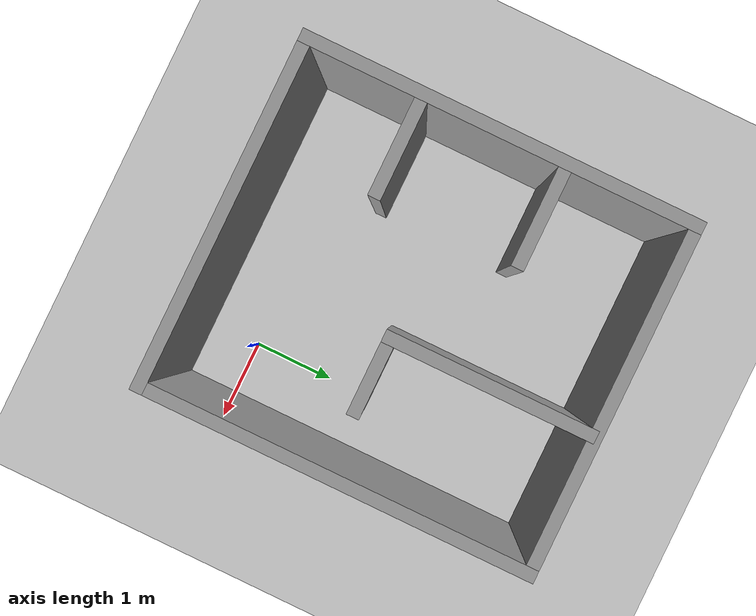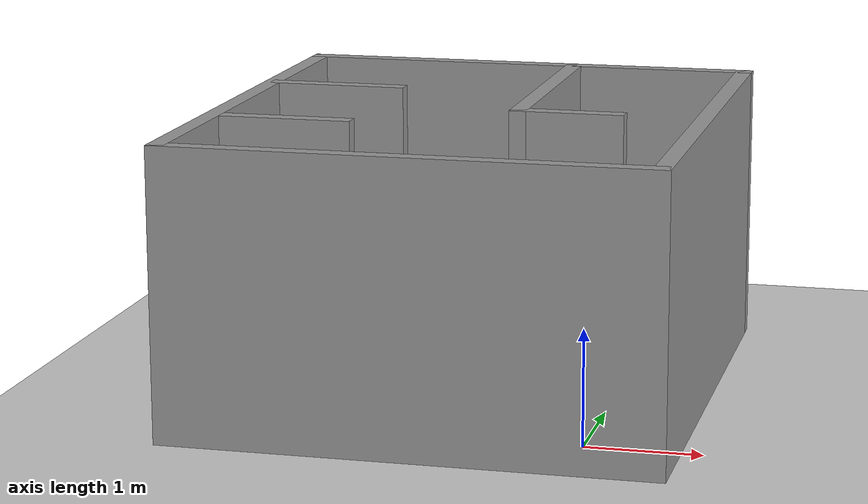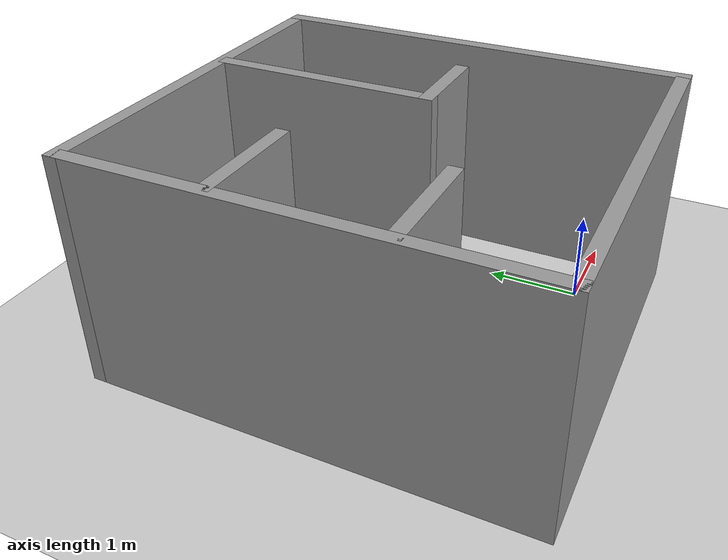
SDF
<sdf version="1.7">
 <world name="default">
  <light name="sun" type="directional">
   <pose>0 0 10 0 -0 0</pose>
   <diffuse>0.8 0.8 0.8 1</diffuse>
   <specular>0.2 0.2 0.2 1</specular>
   <attenuation>
    <range>1000</range>
    <constant>0.9</constant>
    <linear>0.01</linear>
    <quadratic>0.001</quadratic>
   </attenuation>
   <direction>-0.5 0.1 -0.9</direction>
   <spot><inner_angle>0</inner_angle><outer_angle>0</outer_angle><falloff>0</falloff></spot>
  </light>
  <model name="ground_plane">
   <static>1</static>
   <link name="link">
    <collision name="collision">
     <geometry><plane><normal>0 0 1</normal><size>100 100</size></plane></geometry>
     <surface><friction><ode><mu>100</mu><mu2>50</mu2></ode></friction></surface>
    </collision>
    <visual name="visual">
     <cast_shadows>0</cast_shadows>
     <geometry><plane><normal>0 0 1</normal><size>100 100</size></plane></geometry>
     <material>
      <script><uri>file://media/materials/scripts/gazebo.material</uri><name>Gazebo/Grey</name></script>
     </material>
    </visual>
   </link>
  </model>
  <gravity>0 0 -9.8</gravity>
  <magnetic_field>6e-06 2.3e-05 -4.2e-05</magnetic_field>
  <atmosphere type="adiabatic"/>
  <physics type="ode">
   <max_step_size>0.001</max_step_size>
   <real_time_factor>1</real_time_factor>
   <real_time_update_rate>1000</real_time_update_rate>
  </physics>
  <scene><ambient>0.4 0.4 0.4 1</ambient><background>0.7 0.7 0.7 1</background><shadows>1</shadows></scene>
  <audio><device>default</device></audio>
  <spherical_coordinates>
   <surface_model>EARTH_WGS84</surface_model>
   <latitude_deg>0</latitude_deg>
   <longitude_deg>0</longitude_deg>
   <elevation>0</elevation>
   <heading_deg>0</heading_deg>
  </spherical_coordinates>
  <model name="resturent_model">
   <pose>-0.544104 1.16497 0 0 -0 0</pose>
   <link name="Wall_1">
    <collision name="Wall_1_Collision">
     <geometry><box><size>4.75 0.15 2.5</size></box></geometry>
     <pose>0 0 1.25 0 -0 0</pose>
    </collision>
    <visual name="Wall_1_Visual">
     <pose>0 0 1.25 0 -0 0</pose>
     <geometry><box><size>4.75 0.15 2.5</size></box></geometry>
     <material>
      <script><uri>file://media/materials/scripts/gazebo.material</uri><name>Gazebo/Grey</name></script>
      <ambient>1 1 1 1</ambient>
     </material>
     <meta><layer>0</layer></meta>
    </visual>
    <pose>-2.81837 0.444172 0 0 -0 -1.5708</pose>
   </link>
   <link name="Wall_11">
    <collision name="Wall_11_Collision">
     <geometry><box><size>1.25 0.15 2.5</size></box></geometry>
     <pose>0 0 1.25 0 -0 0</pose>
    </collision>
    <visual name="Wall_11_Visual">
     <pose>0 0 1.25 0 -0 0</pose>
     <geometry><box><size>1.25 0.15 2.5</size></box></geometry>
     <material>
      <script><uri>file://media/materials/scripts/gazebo.material</uri><name>Gazebo/Grey</name></script>
      <ambient>1 1 1 1</ambient>
     </material>
     <meta><layer>0</layer></meta>
    </visual>
    <pose>-2.21808 -0.473882 0 0 -0 0</pose>
   </link>
   <link name="Wall_19">
    <collision name="Wall_19_Collision">
     <geometry><box><size>2.5 0.15 2.5</size></box></geometry>
     <pose>0 0 1.25 0 -0 0</pose>
    </collision>
    <visual name="Wall_19_Visual">
     <pose>0 0 1.25 0 -0 0</pose>
     <geometry><box><size>2.5 0.15 2.5</size></box></geometry>
     <material>
      <script><uri>file://media/materials/scripts/gazebo.material</uri><name>Gazebo/Grey</name></script>
      <ambient>1 1 1 1</ambient>
     </material>
     <meta><layer>0</layer></meta>
    </visual>
    <pose>-0.330263 1.50389 0 0 -0 -1.5708</pose>
   </link>
   <link name="Wall_2">
    <collision name="Wall_2_Collision">
     <geometry><box><size>4.25 0.15 2.5</size></box></geometry>
     <pose>0 0 1.25 0 -0 0</pose>
    </collision>
    <visual name="Wall_2_Visual">
     <pose>0 0 1.25 0 -0 0</pose>
     <geometry><box><size>4.25 0.15 2.5</size></box></geometry>
     <material>
      <script><uri>file://media/materials/scripts/gazebo.material</uri><name>Gazebo/Grey</name></script>
      <ambient>1 1 1 1</ambient>
     </material>
     <meta><layer>0</layer></meta>
    </visual>
    <pose>-0.768371 -1.85583 0 0 -0 0</pose>
   </link>
   <link name="Wall_20">
    <collision name="Wall_20_Collision">
     <geometry><box><size>1 0.15 2.5</size></box></geometry>
     <pose>0 0 1.25 0 -0 0</pose>
    </collision>
    <visual name="Wall_20_Visual">
     <pose>0 0 1.25 0 -0 0</pose>
     <geometry><box><size>1 0.15 2.5</size></box></geometry>
     <material>
      <script><uri>file://media/materials/scripts/gazebo.material</uri><name>Gazebo/Grey</name></script>
      <ambient>1 1 1 1</ambient>
     </material>
     <meta><layer>0</layer></meta>
    </visual>
    <pose>0.094737 0.328892 0 0 -0 0</pose>
   </link>
   <link name="Wall_3">
    <collision name="Wall_3_Collision">
     <geometry><box><size>4.75 0.15 2.5</size></box></geometry>
     <pose>0 0 1.25 0 -0 0</pose>
    </collision>
    <visual name="Wall_3_Visual">
     <pose>0 0 1.25 0 -0 0</pose>
     <geometry><box><size>4.75 0.15 2.5</size></box></geometry>
     <material>
      <script><uri>file://media/materials/scripts/gazebo.material</uri><name>Gazebo/Grey</name></script>
      <ambient>1 1 1 1</ambient>
     </material>
     <meta><layer>0</layer></meta>
    </visual>
    <pose>1.28163 0.444172 0 0 -0 1.5708</pose>
   </link>
   <link name="Wall_4">
    <collision name="Wall_4_Collision">
     <geometry><box><size>4.25 0.15 2.5</size></box></geometry>
     <pose>0 0 1.25 0 -0 0</pose>
    </collision>
    <visual name="Wall_4_Visual">
     <pose>0 0 1.25 0 -0 0</pose>
     <geometry><box><size>4.25 0.15 2.5</size></box></geometry>
     <material>
      <script><uri>file://media/materials/scripts/gazebo.material</uri><name>Gazebo/Grey</name></script>
      <ambient>1 1 1 1</ambient>
     </material>
     <meta><layer>0</layer></meta>
    </visual>
    <pose>-0.768371 2.74417 0 0 -0 3.14159</pose>
   </link>
   <link name="Wall_9">
    <collision name="Wall_9_Collision">
     <geometry><box><size>1.25 0.15 2.5</size></box></geometry>
     <pose>0 0 1.25 0 -0 0</pose>
    </collision>
    <visual name="Wall_9_Visual">
     <pose>0 0 1.25 0 -0 0</pose>
     <geometry><box><size>1.25 0.15 2.5</size></box></geometry>
     <material>
      <script><uri>file://media/materials/scripts/gazebo.material</uri><name>Gazebo/Grey</name></script>
      <ambient>1 1 1 1</ambient>
     </material>
     <meta><layer>0</layer></meta>
    </visual>
    <pose>-2.20486 1.21892 0 0 -0 0</pose>
   </link>
   <static>1</static>
  </model>
 </world>
</sdf>
